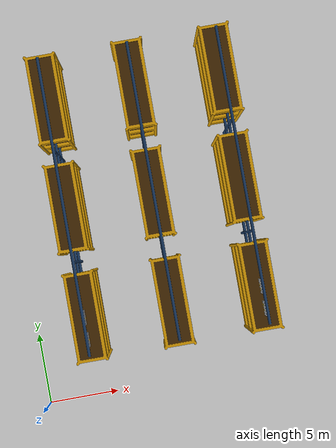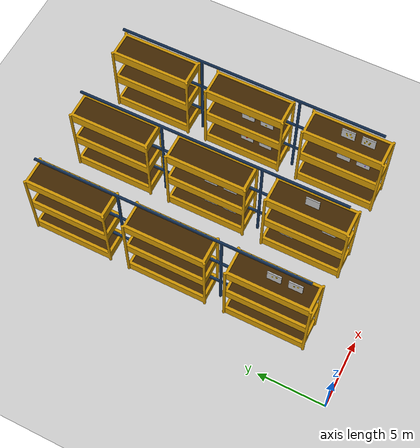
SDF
<sdf version="1.7">
 <world name="default">
  <model name="ground_plane">
   <static>1</static>
   <link name="link">
    <collision name="collision">
     <geometry><plane><normal>0 0 1</normal><size>100 100</size></plane></geometry>
     <surface>
      <contact><collide_bitmask>65535</collide_bitmask></contact>
      <friction><ode><mu>100</mu><mu2>50</mu2></ode></friction>
     </surface>
    </collision>
    <visual name="visual">
     <cast_shadows>0</cast_shadows>
     <geometry><plane><normal>0 0 1</normal><size>100 100</size></plane></geometry>
     <material>
      <script><uri>file://media/materials/scripts/gazebo.material</uri><name>Gazebo/Grey</name></script>
     </material>
    </visual>
   </link>
  </model>
  <model name="greenhouse_world">
   <link name="icuas24">
    <inertial>
     <mass>1</mass>
     <inertia><ixx>10</ixx><ixy>0</ixy><ixz>0</ixz><iyy>10</iyy><iyz>0</iyz><izz>10</izz></inertia>
    </inertial>
    <collision name="icuas24_collision">
     <geometry>
      <mesh>
       <scale>1 1 1</scale>
       <uri>/root/sim_ws/src/icuas24_competition/models/icuas24/icuas24_wrld_notxt.dae</uri>
      </mesh>
     </geometry>
    </collision>
    <visual name="icuas24_visual">
     <geometry>
      <mesh>
       <scale>1 1 1</scale>
       <uri>/root/sim_ws/src/icuas24_competition/models/icuas24/icuas24_wrld_notxt.dae</uri>
      </mesh>
     </geometry>
    </visual>
   </link>
   <static>1</static>
   <pose>0 0 -0.01 0 -0 0</pose>
  </model>
  <model name="plant1">
   <link name="pepper_3">
    <inertial>
     <mass>1</mass>
     <inertia><ixx>10</ixx><ixy>0</ixy><ixz>0</ixz><iyy>10</iyy><iyz>0</iyz><izz>10</izz></inertia>
    </inertial>
    <collision name="pepper_3_collision">
     <geometry>
      <mesh><scale>1 1 1</scale><uri>/root/sim_ws/src/icuas24_competition/models/pepper_3/pepper_3.dae</uri></mesh>
     </geometry>
    </collision>
    <visual name="pepper_3_visual">
     <geometry>
      <mesh><scale>1 1 1</scale><uri>/root/sim_ws/src/icuas24_competition/models/pepper_3/pepper_3.dae</uri></mesh>
     </geometry>
    </visual>
   </link>
   <static>1</static>
   <pose>4 6 6.7 0 -0 1.5707</pose>
  </model>
  <model name="plant2">
   <link name="pepper_3">
    <inertial>
     <mass>1</mass>
     <inertia><ixx>10</ixx><ixy>0</ixy><ixz>0</ixz><iyy>10</iyy><iyz>0</iyz><izz>10</izz></inertia>
    </inertial>
    <collision name="pepper_3_collision">
     <geometry>
      <mesh><scale>1 1 1</scale><uri>/root/sim_ws/src/icuas24_competition/models/pepper_3/pepper_3.dae</uri></mesh>
     </geometry>
    </collision>
    <visual name="pepper_3_visual">
     <geometry>
      <mesh><scale>1 1 1</scale><uri>/root/sim_ws/src/icuas24_competition/models/pepper_3/pepper_3.dae</uri></mesh>
     </geometry>
    </visual>
   </link>
   <static>1</static>
   <pose>4 4.5 6.7 0 -0 1.5707</pose>
  </model>
  <model name="plant3">
   <link name="pepper_3">
    <inertial>
     <mass>1</mass>
     <inertia><ixx>10</ixx><ixy>0</ixy><ixz>0</ixz><iyy>10</iyy><iyz>0</iyz><izz>10</izz></inertia>
    </inertial>
    <collision name="pepper_3_collision">
     <geometry>
      <mesh><scale>1 1 1</scale><uri>/root/sim_ws/src/icuas24_competition/models/pepper_3/pepper_3.dae</uri></mesh>
     </geometry>
    </collision>
    <visual name="pepper_3_visual">
     <geometry>
      <mesh><scale>1 1 1</scale><uri>/root/sim_ws/src/icuas24_competition/models/pepper_3/pepper_3.dae</uri></mesh>
     </geometry>
    </visual>
   </link>
   <static>1</static>
   <pose>4 13.5 3.9 0 -0 1.5707</pose>
  </model>
  <model name="plant10">
   <link name="tomato_1">
    <inertial>
     <mass>1</mass>
     <inertia><ixx>10</ixx><ixy>0</ixy><ixz>0</ixz><iyy>10</iyy><iyz>0</iyz><izz>10</izz></inertia>
    </inertial>
    <collision name="tomato_1_collision">
     <geometry>
      <mesh><scale>1 1 1</scale><uri>/root/sim_ws/src/icuas24_competition/models/tomato_1/tomato_1.dae</uri></mesh>
     </geometry>
    </collision>
    <visual name="tomato_1_visual">
     <geometry>
      <mesh><scale>1 1 1</scale><uri>/root/sim_ws/src/icuas24_competition/models/tomato_1/tomato_1.dae</uri></mesh>
     </geometry>
    </visual>
   </link>
   <static>1</static>
   <pose>16 13.5 1.1 0 0 -1.5707</pose>
  </model>
  <model name="plant11">
   <link name="plant">
    <inertial>
     <mass>1</mass>
     <inertia><ixx>10</ixx><ixy>0</ixy><ixz>0</ixz><iyy>10</iyy><iyz>0</iyz><izz>10</izz></inertia>
    </inertial>
    <collision name="plant_collision">
     <geometry>
      <mesh><scale>1 1 1</scale><uri>/root/sim_ws/src/icuas24_competition/models/plant/plant_base.dae</uri></mesh>
     </geometry>
    </collision>
    <visual name="plant_visual">
     <geometry>
      <mesh><scale>1 1 1</scale><uri>/root/sim_ws/src/icuas24_competition/models/plant/plant_base.dae</uri></mesh>
     </geometry>
    </visual>
   </link>
   <static>1</static>
   <pose>16 12 1.1 0 -0 1.5707</pose>
  </model>
  <model name="plant17">
   <link name="pepper_4">
    <inertial>
     <mass>1</mass>
     <inertia><ixx>10</ixx><ixy>0</ixy><ixz>0</ixz><iyy>10</iyy><iyz>0</iyz><izz>10</izz></inertia>
    </inertial>
    <collision name="pepper_4_collision">
     <geometry>
      <mesh><scale>1 1 1</scale><uri>/root/sim_ws/src/icuas24_competition/models/pepper_4/pepper_4.dae</uri></mesh>
     </geometry>
    </collision>
    <visual name="pepper_4_visual">
     <geometry>
      <mesh><scale>1 1 1</scale><uri>/root/sim_ws/src/icuas24_competition/models/pepper_4/pepper_4.dae</uri></mesh>
     </geometry>
    </visual>
   </link>
   <static>1</static>
   <pose>10 7.5 1.1 0 0 -1.5707</pose>
  </model>
  <model name="plant18">
   <link name="pepper_2">
    <inertial>
     <mass>1</mass>
     <inertia><ixx>10</ixx><ixy>0</ixy><ixz>0</ixz><iyy>10</iyy><iyz>0</iyz><izz>10</izz></inertia>
    </inertial>
    <collision name="pepper_2_collision">
     <geometry>
      <mesh><scale>1 1 1</scale><uri>/root/sim_ws/src/icuas24_competition/models/pepper_2/pepper_2.dae</uri></mesh>
     </geometry>
    </collision>
    <visual name="pepper_2_visual">
     <geometry>
      <mesh><scale>1 1 1</scale><uri>/root/sim_ws/src/icuas24_competition/models/pepper_2/pepper_2.dae</uri></mesh>
     </geometry>
    </visual>
   </link>
   <static>1</static>
   <pose>10 4.5 3.9 0 -0 1.5707</pose>
  </model>
  <model name="plant20">
   <link name="pepper_2">
    <inertial>
     <mass>1</mass>
     <inertia><ixx>10</ixx><ixy>0</ixy><ixz>0</ixz><iyy>10</iyy><iyz>0</iyz><izz>10</izz></inertia>
    </inertial>
    <collision name="pepper_2_collision">
     <geometry>
      <mesh><scale>1 1 1</scale><uri>/root/sim_ws/src/icuas24_competition/models/pepper_2/pepper_2.dae</uri></mesh>
     </geometry>
    </collision>
    <visual name="pepper_2_visual">
     <geometry>
      <mesh><scale>1 1 1</scale><uri>/root/sim_ws/src/icuas24_competition/models/pepper_2/pepper_2.dae</uri></mesh>
     </geometry>
    </visual>
   </link>
   <static>1</static>
   <pose>10 12 3.9 0 0 -1.5707</pose>
  </model>
  <model name="plant21">
   <link name="pepper_4">
    <inertial>
     <mass>1</mass>
     <inertia><ixx>10</ixx><ixy>0</ixy><ixz>0</ixz><iyy>10</iyy><iyz>0</iyz><izz>10</izz></inertia>
    </inertial>
    <collision name="pepper_4_collision">
     <geometry>
      <mesh><scale>1 1 1</scale><uri>/root/sim_ws/src/icuas24_competition/models/pepper_4/pepper_4.dae</uri></mesh>
     </geometry>
    </collision>
    <visual name="pepper_4_visual">
     <geometry>
      <mesh><scale>1 1 1</scale><uri>/root/sim_ws/src/icuas24_competition/models/pepper_4/pepper_4.dae</uri></mesh>
     </geometry>
    </visual>
   </link>
   <static>1</static>
   <pose>10 13.5 3.9 0 -0 1.5707</pose>
  </model>
  <model name="plant22">
   <link name="pepper_2">
    <inertial>
     <mass>1</mass>
     <inertia><ixx>10</ixx><ixy>0</ixy><ixz>0</ixz><iyy>10</iyy><iyz>0</iyz><izz>10</izz></inertia>
    </inertial>
    <collision name="pepper_2_collision">
     <geometry>
      <mesh><scale>1 1 1</scale><uri>/root/sim_ws/src/icuas24_competition/models/pepper_2/pepper_2.dae</uri></mesh>
     </geometry>
    </collision>
    <visual name="pepper_2_visual">
     <geometry>
      <mesh><scale>1 1 1</scale><uri>/root/sim_ws/src/icuas24_competition/models/pepper_2/pepper_2.dae</uri></mesh>
     </geometry>
    </visual>
   </link>
   <static>1</static>
   <pose>16 4.5 6.7 0 0 -1.5707</pose>
  </model>
  <model name="plant23">
   <link name="pepper_2">
    <inertial>
     <mass>1</mass>
     <inertia><ixx>10</ixx><ixy>0</ixy><ixz>0</ixz><iyy>10</iyy><iyz>0</iyz><izz>10</izz></inertia>
    </inertial>
    <collision name="pepper_2_collision">
     <geometry>
      <mesh><scale>1 1 1</scale><uri>/root/sim_ws/src/icuas24_competition/models/pepper_2/pepper_2.dae</uri></mesh>
     </geometry>
    </collision>
    <visual name="pepper_2_visual">
     <geometry>
      <mesh><scale>1 1 1</scale><uri>/root/sim_ws/src/icuas24_competition/models/pepper_2/pepper_2.dae</uri></mesh>
     </geometry>
    </visual>
   </link>
   <static>1</static>
   <pose>16 6 6.7 0 -0 1.5707</pose>
  </model>
  <model name="plant25">
   <link name="pepper_3">
    <inertial>
     <mass>1</mass>
     <inertia><ixx>10</ixx><ixy>0</ixy><ixz>0</ixz><iyy>10</iyy><iyz>0</iyz><izz>10</izz></inertia>
    </inertial>
    <collision name="pepper_3_collision">
     <geometry>
      <mesh><scale>1 1 1</scale><uri>/root/sim_ws/src/icuas24_competition/models/pepper_3/pepper_3.dae</uri></mesh>
     </geometry>
    </collision>
    <visual name="pepper_3_visual">
     <geometry>
      <mesh><scale>1 1 1</scale><uri>/root/sim_ws/src/icuas24_competition/models/pepper_3/pepper_3.dae</uri></mesh>
     </geometry>
    </visual>
   </link>
   <static>1</static>
   <pose>16 12 3.9 0 0 -1.5707</pose>
  </model>
  <model name="plant26">
   <link name="pepper_1">
    <inertial>
     <mass>1</mass>
     <inertia><ixx>10</ixx><ixy>0</ixy><ixz>0</ixz><iyy>10</iyy><iyz>0</iyz><izz>10</izz></inertia>
    </inertial>
    <collision name="pepper_1_collision">
     <geometry>
      <mesh><scale>1 1 1</scale><uri>/root/sim_ws/src/icuas24_competition/models/pepper_1/pepper_1.dae</uri></mesh>
     </geometry>
    </collision>
    <visual name="pepper_1_visual">
     <geometry>
      <mesh><scale>1 1 1</scale><uri>/root/sim_ws/src/icuas24_competition/models/pepper_1/pepper_1.dae</uri></mesh>
     </geometry>
    </visual>
   </link>
   <static>1</static>
   <pose>16 13.5 3.9 0 0 -1.5707</pose>
  </model>
  <model name="plant28">
   <link name="eggplant_3">
    <inertial>
     <mass>1</mass>
     <inertia><ixx>10</ixx><ixy>0</ixy><ixz>0</ixz><iyy>10</iyy><iyz>0</iyz><izz>10</izz></inertia>
    </inertial>
    <collision name="eggplant_3_collision">
     <geometry>
      <mesh>
       <scale>1 1 1</scale>
       <uri>/root/sim_ws/src/icuas24_competition/models/eggplant_3/eggplant_3.dae</uri>
      </mesh>
     </geometry>
    </collision>
    <visual name="eggplant_3_visual">
     <geometry>
      <mesh>
       <scale>1 1 1</scale>
       <uri>/root/sim_ws/src/icuas24_competition/models/eggplant_3/eggplant_3.dae</uri>
      </mesh>
     </geometry>
    </visual>
   </link>
   <static>1</static>
   <pose>4 12 1.1 0 0 -1.5707</pose>
  </model>
  <model name="plant32">
   <link name="eggplant_1">
    <inertial>
     <mass>1</mass>
     <inertia><ixx>10</ixx><ixy>0</ixy><ixz>0</ixz><iyy>10</iyy><iyz>0</iyz><izz>10</izz></inertia>
    </inertial>
    <collision name="eggplant_1_collision">
     <geometry>
      <mesh>
       <scale>1 1 1</scale>
       <uri>/root/sim_ws/src/icuas24_competition/models/eggplant_1/eggplant_1.dae</uri>
      </mesh>
     </geometry>
    </collision>
    <visual name="eggplant_1_visual">
     <geometry>
      <mesh>
       <scale>1 1 1</scale>
       <uri>/root/sim_ws/src/icuas24_competition/models/eggplant_1/eggplant_1.dae</uri>
      </mesh>
     </geometry>
    </visual>
   </link>
   <static>1</static>
   <pose>10 6 6.7 0 0 -1.5707</pose>
  </model>
  <model name="plant33">
   <link name="eggplant_1">
    <inertial>
     <mass>1</mass>
     <inertia><ixx>10</ixx><ixy>0</ixy><ixz>0</ixz><iyy>10</iyy><iyz>0</iyz><izz>10</izz></inertia>
    </inertial>
    <collision name="eggplant_1_collision">
     <geometry>
      <mesh>
       <scale>1 1 1</scale>
       <uri>/root/sim_ws/src/icuas24_competition/models/eggplant_1/eggplant_1.dae</uri>
      </mesh>
     </geometry>
    </collision>
    <visual name="eggplant_1_visual">
     <geometry>
      <mesh>
       <scale>1 1 1</scale>
       <uri>/root/sim_ws/src/icuas24_competition/models/eggplant_1/eggplant_1.dae</uri>
      </mesh>
     </geometry>
    </visual>
   </link>
   <static>1</static>
   <pose>10 13.5 1.1 0 -0 1.5707</pose>
  </model>
  <model name="plant35">
   <link name="eggplant_1">
    <inertial>
     <mass>1</mass>
     <inertia><ixx>10</ixx><ixy>0</ixy><ixz>0</ixz><iyy>10</iyy><iyz>0</iyz><izz>10</izz></inertia>
    </inertial>
    <collision name="eggplant_1_collision">
     <geometry>
      <mesh>
       <scale>1 1 1</scale>
       <uri>/root/sim_ws/src/icuas24_competition/models/eggplant_1/eggplant_1.dae</uri>
      </mesh>
     </geometry>
    </collision>
    <visual name="eggplant_1_visual">
     <geometry>
      <mesh>
       <scale>1 1 1</scale>
       <uri>/root/sim_ws/src/icuas24_competition/models/eggplant_1/eggplant_1.dae</uri>
      </mesh>
     </geometry>
    </visual>
   </link>
   <static>1</static>
   <pose>10 12 1.1 0 -0 1.5707</pose>
  </model>
  <model name="plant39">
   <link name="plant">
    <inertial>
     <mass>1</mass>
     <inertia><ixx>10</ixx><ixy>0</ixy><ixz>0</ixz><iyy>10</iyy><iyz>0</iyz><izz>10</izz></inertia>
    </inertial>
    <collision name="plant_collision">
     <geometry>
      <mesh><scale>1 1 1</scale><uri>/root/sim_ws/src/icuas24_competition/models/plant/plant_base.dae</uri></mesh>
     </geometry>
    </collision>
    <visual name="plant_visual">
     <geometry>
      <mesh><scale>1 1 1</scale><uri>/root/sim_ws/src/icuas24_competition/models/plant/plant_base.dae</uri></mesh>
     </geometry>
    </visual>
   </link>
   <static>1</static>
   <pose>16 6 3.9 0 -0 1.5707</pose>
  </model>
  <model name="plant40">
   <link name="eggplant_3">
    <inertial>
     <mass>1</mass>
     <inertia><ixx>10</ixx><ixy>0</ixy><ixz>0</ixz><iyy>10</iyy><iyz>0</iyz><izz>10</izz></inertia>
    </inertial>
    <collision name="eggplant_3_collision">
     <geometry>
      <mesh>
       <scale>1 1 1</scale>
       <uri>/root/sim_ws/src/icuas24_competition/models/eggplant_3/eggplant_3.dae</uri>
      </mesh>
     </geometry>
    </collision>
    <visual name="eggplant_3_visual">
     <geometry>
      <mesh>
       <scale>1 1 1</scale>
       <uri>/root/sim_ws/src/icuas24_competition/models/eggplant_3/eggplant_3.dae</uri>
      </mesh>
     </geometry>
    </visual>
   </link>
   <static>1</static>
   <pose>16 4.5 3.9 0 0 -1.5707</pose>
  </model>
 </world>
</sdf>
